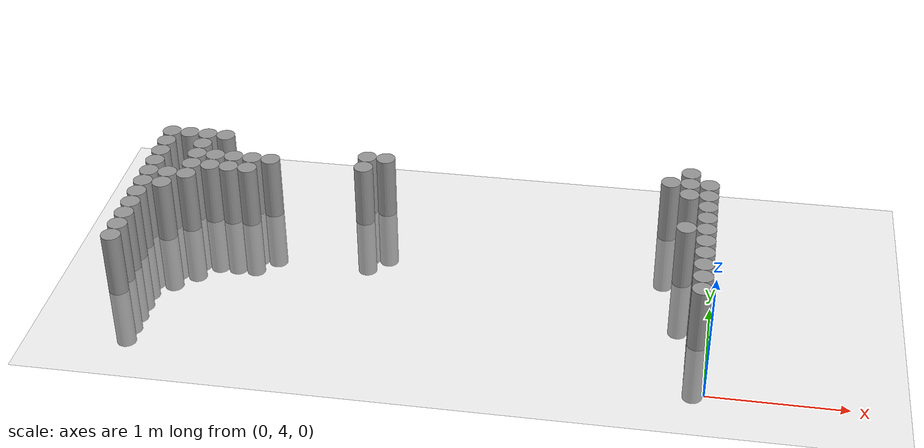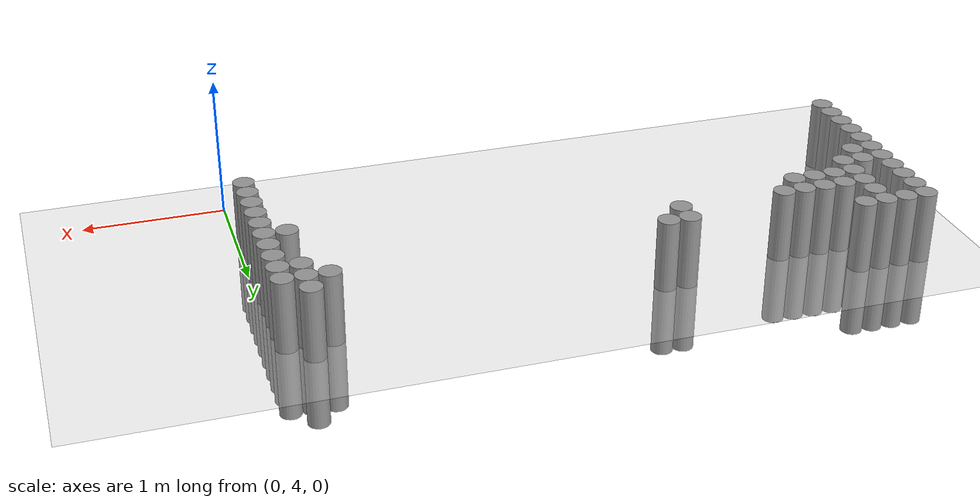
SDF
<sdf version="1.6">
 <world name="default">
  <model name="ground_plane">
   <static>1</static>
   <link name="link">
    <collision name="collision">
     <geometry><plane><normal>0 0 1</normal><size>100 100</size></plane></geometry>
     <surface><friction><ode><mu>100</mu><mu2>50</mu2></ode></friction></surface>
    </collision>
    <visual name="visual">
     <cast_shadows>0</cast_shadows>
     <geometry><plane><normal>0 0 1</normal><size>100 100</size></plane></geometry>
     <material>
      <script><uri>file://media/materials/scripts/gazebo.material</uri><name>Gazebo/Grey</name></script>
     </material>
    </visual>
   </link>
  </model>
  <model name="unit_cylinder_88">
   <pose>-0.075000 4.575000 0.000000 0.000000 0.000000 0.000000</pose>
   <link name="link">
    <inertial>
     <mass>1</mass>
     <inertia><ixx>0.145833</ixx><ixy>0</ixy><ixz>0</ixz><iyy>0.145833</iyy><iyz>0</iyz><izz>0.125</izz></inertia>
    </inertial>
    <collision name="collision">
     <geometry><cylinder><radius>0.075000</radius><length>1</length></cylinder></geometry>
    </collision>
    <visual name="visual">
     <geometry><cylinder><radius>0.075000</radius><length>1</length></cylinder></geometry>
     <material>
      <script><name>Gazebo/Grey</name><uri>file://media/materials/scripts/gazebo.material</uri></script>
     </material>
    </visual>
   </link>
  </model>
  <model name="unit_cylinder_89">
   <pose>-4.425000 4.575000 0.000000 0.000000 0.000000 0.000000</pose>
   <link name="link">
    <inertial>
     <mass>1</mass>
     <inertia><ixx>0.145833</ixx><ixy>0</ixy><ixz>0</ixz><iyy>0.145833</iyy><iyz>0</iyz><izz>0.125</izz></inertia>
    </inertial>
    <collision name="collision">
     <geometry><cylinder><radius>0.075000</radius><length>1</length></cylinder></geometry>
    </collision>
    <visual name="visual">
     <geometry><cylinder><radius>0.075000</radius><length>1</length></cylinder></geometry>
     <material>
      <script><name>Gazebo/Grey</name><uri>file://media/materials/scripts/gazebo.material</uri></script>
     </material>
    </visual>
   </link>
  </model>
  <model name="unit_cylinder_90">
   <pose>-0.075000 4.725000 0.000000 0.000000 0.000000 0.000000</pose>
   <link name="link">
    <inertial>
     <mass>1</mass>
     <inertia><ixx>0.145833</ixx><ixy>0</ixy><ixz>0</ixz><iyy>0.145833</iyy><iyz>0</iyz><izz>0.125</izz></inertia>
    </inertial>
    <collision name="collision">
     <geometry><cylinder><radius>0.075000</radius><length>1</length></cylinder></geometry>
    </collision>
    <visual name="visual">
     <geometry><cylinder><radius>0.075000</radius><length>1</length></cylinder></geometry>
     <material>
      <script><name>Gazebo/Grey</name><uri>file://media/materials/scripts/gazebo.material</uri></script>
     </material>
    </visual>
   </link>
  </model>
  <model name="unit_cylinder_91">
   <pose>-4.425000 4.725000 0.000000 0.000000 0.000000 0.000000</pose>
   <link name="link">
    <inertial>
     <mass>1</mass>
     <inertia><ixx>0.145833</ixx><ixy>0</ixy><ixz>0</ixz><iyy>0.145833</iyy><iyz>0</iyz><izz>0.125</izz></inertia>
    </inertial>
    <collision name="collision">
     <geometry><cylinder><radius>0.075000</radius><length>1</length></cylinder></geometry>
    </collision>
    <visual name="visual">
     <geometry><cylinder><radius>0.075000</radius><length>1</length></cylinder></geometry>
     <material>
      <script><name>Gazebo/Grey</name><uri>file://media/materials/scripts/gazebo.material</uri></script>
     </material>
    </visual>
   </link>
  </model>
  <model name="unit_cylinder_92">
   <pose>-0.075000 4.875000 0.000000 0.000000 0.000000 0.000000</pose>
   <link name="link">
    <inertial>
     <mass>1</mass>
     <inertia><ixx>0.145833</ixx><ixy>0</ixy><ixz>0</ixz><iyy>0.145833</iyy><iyz>0</iyz><izz>0.125</izz></inertia>
    </inertial>
    <collision name="collision">
     <geometry><cylinder><radius>0.075000</radius><length>1</length></cylinder></geometry>
    </collision>
    <visual name="visual">
     <geometry><cylinder><radius>0.075000</radius><length>1</length></cylinder></geometry>
     <material>
      <script><name>Gazebo/Grey</name><uri>file://media/materials/scripts/gazebo.material</uri></script>
     </material>
    </visual>
   </link>
  </model>
  <model name="unit_cylinder_93">
   <pose>-4.425000 4.875000 0.000000 0.000000 0.000000 0.000000</pose>
   <link name="link">
    <inertial>
     <mass>1</mass>
     <inertia><ixx>0.145833</ixx><ixy>0</ixy><ixz>0</ixz><iyy>0.145833</iyy><iyz>0</iyz><izz>0.125</izz></inertia>
    </inertial>
    <collision name="collision">
     <geometry><cylinder><radius>0.075000</radius><length>1</length></cylinder></geometry>
    </collision>
    <visual name="visual">
     <geometry><cylinder><radius>0.075000</radius><length>1</length></cylinder></geometry>
     <material>
      <script><name>Gazebo/Grey</name><uri>file://media/materials/scripts/gazebo.material</uri></script>
     </material>
    </visual>
   </link>
  </model>
  <model name="unit_cylinder_94">
   <pose>-0.075000 5.025000 0.000000 0.000000 0.000000 0.000000</pose>
   <link name="link">
    <inertial>
     <mass>1</mass>
     <inertia><ixx>0.145833</ixx><ixy>0</ixy><ixz>0</ixz><iyy>0.145833</iyy><iyz>0</iyz><izz>0.125</izz></inertia>
    </inertial>
    <collision name="collision">
     <geometry><cylinder><radius>0.075000</radius><length>1</length></cylinder></geometry>
    </collision>
    <visual name="visual">
     <geometry><cylinder><radius>0.075000</radius><length>1</length></cylinder></geometry>
     <material>
      <script><name>Gazebo/Grey</name><uri>file://media/materials/scripts/gazebo.material</uri></script>
     </material>
    </visual>
   </link>
  </model>
  <model name="unit_cylinder_95">
   <pose>-4.425000 5.025000 0.000000 0.000000 0.000000 0.000000</pose>
   <link name="link">
    <inertial>
     <mass>1</mass>
     <inertia><ixx>0.145833</ixx><ixy>0</ixy><ixz>0</ixz><iyy>0.145833</iyy><iyz>0</iyz><izz>0.125</izz></inertia>
    </inertial>
    <collision name="collision">
     <geometry><cylinder><radius>0.075000</radius><length>1</length></cylinder></geometry>
    </collision>
    <visual name="visual">
     <geometry><cylinder><radius>0.075000</radius><length>1</length></cylinder></geometry>
     <material>
      <script><name>Gazebo/Grey</name><uri>file://media/materials/scripts/gazebo.material</uri></script>
     </material>
    </visual>
   </link>
  </model>
  <model name="unit_cylinder_96">
   <pose>-4.425000 5.175000 0.000000 0.000000 0.000000 0.000000</pose>
   <link name="link">
    <inertial>
     <mass>1</mass>
     <inertia><ixx>0.145833</ixx><ixy>0</ixy><ixz>0</ixz><iyy>0.145833</iyy><iyz>0</iyz><izz>0.125</izz></inertia>
    </inertial>
    <collision name="collision">
     <geometry><cylinder><radius>0.075000</radius><length>1</length></cylinder></geometry>
    </collision>
    <visual name="visual">
     <geometry><cylinder><radius>0.075000</radius><length>1</length></cylinder></geometry>
     <material>
      <script><name>Gazebo/Grey</name><uri>file://media/materials/scripts/gazebo.material</uri></script>
     </material>
    </visual>
   </link>
  </model>
  <model name="unit_cylinder_97">
   <pose>-4.425000 5.325000 0.000000 0.000000 0.000000 0.000000</pose>
   <link name="link">
    <inertial>
     <mass>1</mass>
     <inertia><ixx>0.145833</ixx><ixy>0</ixy><ixz>0</ixz><iyy>0.145833</iyy><iyz>0</iyz><izz>0.125</izz></inertia>
    </inertial>
    <collision name="collision">
     <geometry><cylinder><radius>0.075000</radius><length>1</length></cylinder></geometry>
    </collision>
    <visual name="visual">
     <geometry><cylinder><radius>0.075000</radius><length>1</length></cylinder></geometry>
     <material>
      <script><name>Gazebo/Grey</name><uri>file://media/materials/scripts/gazebo.material</uri></script>
     </material>
    </visual>
   </link>
  </model>
  <model name="unit_cylinder_98">
   <pose>-4.425000 5.475000 0.000000 0.000000 0.000000 0.000000</pose>
   <link name="link">
    <inertial>
     <mass>1</mass>
     <inertia><ixx>0.145833</ixx><ixy>0</ixy><ixz>0</ixz><iyy>0.145833</iyy><iyz>0</iyz><izz>0.125</izz></inertia>
    </inertial>
    <collision name="collision">
     <geometry><cylinder><radius>0.075000</radius><length>1</length></cylinder></geometry>
    </collision>
    <visual name="visual">
     <geometry><cylinder><radius>0.075000</radius><length>1</length></cylinder></geometry>
     <material>
      <script><name>Gazebo/Grey</name><uri>file://media/materials/scripts/gazebo.material</uri></script>
     </material>
    </visual>
   </link>
  </model>
  <model name="unit_cylinder_99">
   <pose>-4.425000 5.625000 0.000000 0.000000 0.000000 0.000000</pose>
   <link name="link">
    <inertial>
     <mass>1</mass>
     <inertia><ixx>0.145833</ixx><ixy>0</ixy><ixz>0</ixz><iyy>0.145833</iyy><iyz>0</iyz><izz>0.125</izz></inertia>
    </inertial>
    <collision name="collision">
     <geometry><cylinder><radius>0.075000</radius><length>1</length></cylinder></geometry>
    </collision>
    <visual name="visual">
     <geometry><cylinder><radius>0.075000</radius><length>1</length></cylinder></geometry>
     <material>
      <script><name>Gazebo/Grey</name><uri>file://media/materials/scripts/gazebo.material</uri></script>
     </material>
    </visual>
   </link>
  </model>
  <model name="unit_cylinder_100">
   <pose>-4.425000 5.775000 0.000000 0.000000 0.000000 0.000000</pose>
   <link name="link">
    <inertial>
     <mass>1</mass>
     <inertia><ixx>0.145833</ixx><ixy>0</ixy><ixz>0</ixz><iyy>0.145833</iyy><iyz>0</iyz><izz>0.125</izz></inertia>
    </inertial>
    <collision name="collision">
     <geometry><cylinder><radius>0.075000</radius><length>1</length></cylinder></geometry>
    </collision>
    <visual name="visual">
     <geometry><cylinder><radius>0.075000</radius><length>1</length></cylinder></geometry>
     <material>
      <script><name>Gazebo/Grey</name><uri>file://media/materials/scripts/gazebo.material</uri></script>
     </material>
    </visual>
   </link>
  </model>
  <model name="unit_cylinder_101">
   <pose>-4.425000 5.925000 0.000000 0.000000 0.000000 0.000000</pose>
   <link name="link">
    <inertial>
     <mass>1</mass>
     <inertia><ixx>0.145833</ixx><ixy>0</ixy><ixz>0</ixz><iyy>0.145833</iyy><iyz>0</iyz><izz>0.125</izz></inertia>
    </inertial>
    <collision name="collision">
     <geometry><cylinder><radius>0.075000</radius><length>1</length></cylinder></geometry>
    </collision>
    <visual name="visual">
     <geometry><cylinder><radius>0.075000</radius><length>1</length></cylinder></geometry>
     <material>
      <script><name>Gazebo/Grey</name><uri>file://media/materials/scripts/gazebo.material</uri></script>
     </material>
    </visual>
   </link>
  </model>
  <model name="unit_cylinder_102">
   <pose>-4.425000 6.075000 0.000000 0.000000 0.000000 0.000000</pose>
   <link name="link">
    <inertial>
     <mass>1</mass>
     <inertia><ixx>0.145833</ixx><ixy>0</ixy><ixz>0</ixz><iyy>0.145833</iyy><iyz>0</iyz><izz>0.125</izz></inertia>
    </inertial>
    <collision name="collision">
     <geometry><cylinder><radius>0.075000</radius><length>1</length></cylinder></geometry>
    </collision>
    <visual name="visual">
     <geometry><cylinder><radius>0.075000</radius><length>1</length></cylinder></geometry>
     <material>
      <script><name>Gazebo/Grey</name><uri>file://media/materials/scripts/gazebo.material</uri></script>
     </material>
    </visual>
   </link>
  </model>
  <model name="unit_cylinder_126">
   <pose>-4.275000 5.325000 0.000000 0.000000 0.000000 0.000000</pose>
   <link name="link">
    <inertial>
     <mass>1</mass>
     <inertia><ixx>0.145833</ixx><ixy>0</ixy><ixz>0</ixz><iyy>0.145833</iyy><iyz>0</iyz><izz>0.125</izz></inertia>
    </inertial>
    <collision name="collision">
     <geometry><cylinder><radius>0.075000</radius><length>1</length></cylinder></geometry>
    </collision>
    <visual name="visual">
     <geometry><cylinder><radius>0.075000</radius><length>1</length></cylinder></geometry>
     <material>
      <script><name>Gazebo/Grey</name><uri>file://media/materials/scripts/gazebo.material</uri></script>
     </material>
    </visual>
   </link>
  </model>
  <model name="unit_cylinder_127">
   <pose>-4.275000 5.475000 0.000000 0.000000 0.000000 0.000000</pose>
   <link name="link">
    <inertial>
     <mass>1</mass>
     <inertia><ixx>0.145833</ixx><ixy>0</ixy><ixz>0</ixz><iyy>0.145833</iyy><iyz>0</iyz><izz>0.125</izz></inertia>
    </inertial>
    <collision name="collision">
     <geometry><cylinder><radius>0.075000</radius><length>1</length></cylinder></geometry>
    </collision>
    <visual name="visual">
     <geometry><cylinder><radius>0.075000</radius><length>1</length></cylinder></geometry>
     <material>
      <script><name>Gazebo/Grey</name><uri>file://media/materials/scripts/gazebo.material</uri></script>
     </material>
    </visual>
   </link>
  </model>
  <model name="unit_cylinder_128">
   <pose>-4.275000 6.075000 0.000000 0.000000 0.000000 0.000000</pose>
   <link name="link">
    <inertial>
     <mass>1</mass>
     <inertia><ixx>0.145833</ixx><ixy>0</ixy><ixz>0</ixz><iyy>0.145833</iyy><iyz>0</iyz><izz>0.125</izz></inertia>
    </inertial>
    <collision name="collision">
     <geometry><cylinder><radius>0.075000</radius><length>1</length></cylinder></geometry>
    </collision>
    <visual name="visual">
     <geometry><cylinder><radius>0.075000</radius><length>1</length></cylinder></geometry>
     <material>
      <script><name>Gazebo/Grey</name><uri>file://media/materials/scripts/gazebo.material</uri></script>
     </material>
    </visual>
   </link>
  </model>
  <model name="unit_cylinder_144">
   <pose>-4.125000 5.475000 0.000000 0.000000 0.000000 0.000000</pose>
   <link name="link">
    <inertial>
     <mass>1</mass>
     <inertia><ixx>0.145833</ixx><ixy>0</ixy><ixz>0</ixz><iyy>0.145833</iyy><iyz>0</iyz><izz>0.125</izz></inertia>
    </inertial>
    <collision name="collision">
     <geometry><cylinder><radius>0.075000</radius><length>1</length></cylinder></geometry>
    </collision>
    <visual name="visual">
     <geometry><cylinder><radius>0.075000</radius><length>1</length></cylinder></geometry>
     <material>
      <script><name>Gazebo/Grey</name><uri>file://media/materials/scripts/gazebo.material</uri></script>
     </material>
    </visual>
   </link>
  </model>
  <model name="unit_cylinder_145">
   <pose>-4.125000 5.625000 0.000000 0.000000 0.000000 0.000000</pose>
   <link name="link">
    <inertial>
     <mass>1</mass>
     <inertia><ixx>0.145833</ixx><ixy>0</ixy><ixz>0</ixz><iyy>0.145833</iyy><iyz>0</iyz><izz>0.125</izz></inertia>
    </inertial>
    <collision name="collision">
     <geometry><cylinder><radius>0.075000</radius><length>1</length></cylinder></geometry>
    </collision>
    <visual name="visual">
     <geometry><cylinder><radius>0.075000</radius><length>1</length></cylinder></geometry>
     <material>
      <script><name>Gazebo/Grey</name><uri>file://media/materials/scripts/gazebo.material</uri></script>
     </material>
    </visual>
   </link>
  </model>
  <model name="unit_cylinder_146">
   <pose>-4.125000 5.775000 0.000000 0.000000 0.000000 0.000000</pose>
   <link name="link">
    <inertial>
     <mass>1</mass>
     <inertia><ixx>0.145833</ixx><ixy>0</ixy><ixz>0</ixz><iyy>0.145833</iyy><iyz>0</iyz><izz>0.125</izz></inertia>
    </inertial>
    <collision name="collision">
     <geometry><cylinder><radius>0.075000</radius><length>1</length></cylinder></geometry>
    </collision>
    <visual name="visual">
     <geometry><cylinder><radius>0.075000</radius><length>1</length></cylinder></geometry>
     <material>
      <script><name>Gazebo/Grey</name><uri>file://media/materials/scripts/gazebo.material</uri></script>
     </material>
    </visual>
   </link>
  </model>
  <model name="unit_cylinder_147">
   <pose>-4.125000 5.925000 0.000000 0.000000 0.000000 0.000000</pose>
   <link name="link">
    <inertial>
     <mass>1</mass>
     <inertia><ixx>0.145833</ixx><ixy>0</ixy><ixz>0</ixz><iyy>0.145833</iyy><iyz>0</iyz><izz>0.125</izz></inertia>
    </inertial>
    <collision name="collision">
     <geometry><cylinder><radius>0.075000</radius><length>1</length></cylinder></geometry>
    </collision>
    <visual name="visual">
     <geometry><cylinder><radius>0.075000</radius><length>1</length></cylinder></geometry>
     <material>
      <script><name>Gazebo/Grey</name><uri>file://media/materials/scripts/gazebo.material</uri></script>
     </material>
    </visual>
   </link>
  </model>
  <model name="unit_cylinder_148">
   <pose>-4.125000 6.075000 0.000000 0.000000 0.000000 0.000000</pose>
   <link name="link">
    <inertial>
     <mass>1</mass>
     <inertia><ixx>0.145833</ixx><ixy>0</ixy><ixz>0</ixz><iyy>0.145833</iyy><iyz>0</iyz><izz>0.125</izz></inertia>
    </inertial>
    <collision name="collision">
     <geometry><cylinder><radius>0.075000</radius><length>1</length></cylinder></geometry>
    </collision>
    <visual name="visual">
     <geometry><cylinder><radius>0.075000</radius><length>1</length></cylinder></geometry>
     <material>
      <script><name>Gazebo/Grey</name><uri>file://media/materials/scripts/gazebo.material</uri></script>
     </material>
    </visual>
   </link>
  </model>
  <model name="unit_cylinder_151">
   <pose>-3.975000 5.625000 0.000000 0.000000 0.000000 0.000000</pose>
   <link name="link">
    <inertial>
     <mass>1</mass>
     <inertia><ixx>0.145833</ixx><ixy>0</ixy><ixz>0</ixz><iyy>0.145833</iyy><iyz>0</iyz><izz>0.125</izz></inertia>
    </inertial>
    <collision name="collision">
     <geometry><cylinder><radius>0.075000</radius><length>1</length></cylinder></geometry>
    </collision>
    <visual name="visual">
     <geometry><cylinder><radius>0.075000</radius><length>1</length></cylinder></geometry>
     <material>
      <script><name>Gazebo/Grey</name><uri>file://media/materials/scripts/gazebo.material</uri></script>
     </material>
    </visual>
   </link>
  </model>
  <model name="unit_cylinder_152">
   <pose>-3.975000 5.775000 0.000000 0.000000 0.000000 0.000000</pose>
   <link name="link">
    <inertial>
     <mass>1</mass>
     <inertia><ixx>0.145833</ixx><ixy>0</ixy><ixz>0</ixz><iyy>0.145833</iyy><iyz>0</iyz><izz>0.125</izz></inertia>
    </inertial>
    <collision name="collision">
     <geometry><cylinder><radius>0.075000</radius><length>1</length></cylinder></geometry>
    </collision>
    <visual name="visual">
     <geometry><cylinder><radius>0.075000</radius><length>1</length></cylinder></geometry>
     <material>
      <script><name>Gazebo/Grey</name><uri>file://media/materials/scripts/gazebo.material</uri></script>
     </material>
    </visual>
   </link>
  </model>
  <model name="unit_cylinder_153">
   <pose>-3.975000 6.075000 0.000000 0.000000 0.000000 0.000000</pose>
   <link name="link">
    <inertial>
     <mass>1</mass>
     <inertia><ixx>0.145833</ixx><ixy>0</ixy><ixz>0</ixz><iyy>0.145833</iyy><iyz>0</iyz><izz>0.125</izz></inertia>
    </inertial>
    <collision name="collision">
     <geometry><cylinder><radius>0.075000</radius><length>1</length></cylinder></geometry>
    </collision>
    <visual name="visual">
     <geometry><cylinder><radius>0.075000</radius><length>1</length></cylinder></geometry>
     <material>
      <script><name>Gazebo/Grey</name><uri>file://media/materials/scripts/gazebo.material</uri></script>
     </material>
    </visual>
   </link>
  </model>
  <model name="unit_cylinder_154">
   <pose>-3.825000 5.625000 0.000000 0.000000 0.000000 0.000000</pose>
   <link name="link">
    <inertial>
     <mass>1</mass>
     <inertia><ixx>0.145833</ixx><ixy>0</ixy><ixz>0</ixz><iyy>0.145833</iyy><iyz>0</iyz><izz>0.125</izz></inertia>
    </inertial>
    <collision name="collision">
     <geometry><cylinder><radius>0.075000</radius><length>1</length></cylinder></geometry>
    </collision>
    <visual name="visual">
     <geometry><cylinder><radius>0.075000</radius><length>1</length></cylinder></geometry>
     <material>
      <script><name>Gazebo/Grey</name><uri>file://media/materials/scripts/gazebo.material</uri></script>
     </material>
    </visual>
   </link>
  </model>
  <model name="unit_cylinder_155">
   <pose>-3.825000 5.775000 0.000000 0.000000 0.000000 0.000000</pose>
   <link name="link">
    <inertial>
     <mass>1</mass>
     <inertia><ixx>0.145833</ixx><ixy>0</ixy><ixz>0</ixz><iyy>0.145833</iyy><iyz>0</iyz><izz>0.125</izz></inertia>
    </inertial>
    <collision name="collision">
     <geometry><cylinder><radius>0.075000</radius><length>1</length></cylinder></geometry>
    </collision>
    <visual name="visual">
     <geometry><cylinder><radius>0.075000</radius><length>1</length></cylinder></geometry>
     <material>
      <script><name>Gazebo/Grey</name><uri>file://media/materials/scripts/gazebo.material</uri></script>
     </material>
    </visual>
   </link>
  </model>
  <model name="unit_cylinder_156">
   <pose>-3.675000 5.625000 0.000000 0.000000 0.000000 0.000000</pose>
   <link name="link">
    <inertial>
     <mass>1</mass>
     <inertia><ixx>0.145833</ixx><ixy>0</ixy><ixz>0</ixz><iyy>0.145833</iyy><iyz>0</iyz><izz>0.125</izz></inertia>
    </inertial>
    <collision name="collision">
     <geometry><cylinder><radius>0.075000</radius><length>1</length></cylinder></geometry>
    </collision>
    <visual name="visual">
     <geometry><cylinder><radius>0.075000</radius><length>1</length></cylinder></geometry>
     <material>
      <script><name>Gazebo/Grey</name><uri>file://media/materials/scripts/gazebo.material</uri></script>
     </material>
    </visual>
   </link>
  </model>
  <model name="unit_cylinder_157">
   <pose>-3.675000 5.775000 0.000000 0.000000 0.000000 0.000000</pose>
   <link name="link">
    <inertial>
     <mass>1</mass>
     <inertia><ixx>0.145833</ixx><ixy>0</ixy><ixz>0</ixz><iyy>0.145833</iyy><iyz>0</iyz><izz>0.125</izz></inertia>
    </inertial>
    <collision name="collision">
     <geometry><cylinder><radius>0.075000</radius><length>1</length></cylinder></geometry>
    </collision>
    <visual name="visual">
     <geometry><cylinder><radius>0.075000</radius><length>1</length></cylinder></geometry>
     <material>
      <script><name>Gazebo/Grey</name><uri>file://media/materials/scripts/gazebo.material</uri></script>
     </material>
    </visual>
   </link>
  </model>
  <model name="unit_cylinder_158">
   <pose>-3.525000 5.775000 0.000000 0.000000 0.000000 0.000000</pose>
   <link name="link">
    <inertial>
     <mass>1</mass>
     <inertia><ixx>0.145833</ixx><ixy>0</ixy><ixz>0</ixz><iyy>0.145833</iyy><iyz>0</iyz><izz>0.125</izz></inertia>
    </inertial>
    <collision name="collision">
     <geometry><cylinder><radius>0.075000</radius><length>1</length></cylinder></geometry>
    </collision>
    <visual name="visual">
     <geometry><cylinder><radius>0.075000</radius><length>1</length></cylinder></geometry>
     <material>
      <script><name>Gazebo/Grey</name><uri>file://media/materials/scripts/gazebo.material</uri></script>
     </material>
    </visual>
   </link>
  </model>
  <model name="unit_cylinder_165">
   <pose>-2.775000 5.775000 0.000000 0.000000 0.000000 0.000000</pose>
   <link name="link">
    <inertial>
     <mass>1</mass>
     <inertia><ixx>0.145833</ixx><ixy>0</ixy><ixz>0</ixz><iyy>0.145833</iyy><iyz>0</iyz><izz>0.125</izz></inertia>
    </inertial>
    <collision name="collision">
     <geometry><cylinder><radius>0.075000</radius><length>1</length></cylinder></geometry>
    </collision>
    <visual name="visual">
     <geometry><cylinder><radius>0.075000</radius><length>1</length></cylinder></geometry>
     <material>
      <script><name>Gazebo/Grey</name><uri>file://media/materials/scripts/gazebo.material</uri></script>
     </material>
    </visual>
   </link>
  </model>
  <model name="unit_cylinder_166">
   <pose>-2.775000 5.925000 0.000000 0.000000 0.000000 0.000000</pose>
   <link name="link">
    <inertial>
     <mass>1</mass>
     <inertia><ixx>0.145833</ixx><ixy>0</ixy><ixz>0</ixz><iyy>0.145833</iyy><iyz>0</iyz><izz>0.125</izz></inertia>
    </inertial>
    <collision name="collision">
     <geometry><cylinder><radius>0.075000</radius><length>1</length></cylinder></geometry>
    </collision>
    <visual name="visual">
     <geometry><cylinder><radius>0.075000</radius><length>1</length></cylinder></geometry>
     <material>
      <script><name>Gazebo/Grey</name><uri>file://media/materials/scripts/gazebo.material</uri></script>
     </material>
    </visual>
   </link>
  </model>
  <model name="unit_cylinder_171">
   <pose>-2.625000 5.925000 0.000000 0.000000 0.000000 0.000000</pose>
   <link name="link">
    <inertial>
     <mass>1</mass>
     <inertia><ixx>0.145833</ixx><ixy>0</ixy><ixz>0</ixz><iyy>0.145833</iyy><iyz>0</iyz><izz>0.125</izz></inertia>
    </inertial>
    <collision name="collision">
     <geometry><cylinder><radius>0.075000</radius><length>1</length></cylinder></geometry>
    </collision>
    <visual name="visual">
     <geometry><cylinder><radius>0.075000</radius><length>1</length></cylinder></geometry>
     <material>
      <script><name>Gazebo/Grey</name><uri>file://media/materials/scripts/gazebo.material</uri></script>
     </material>
    </visual>
   </link>
  </model>
  <model name="unit_cylinder_214">
   <pose>-0.375000 5.925000 0.000000 0.000000 0.000000 0.000000</pose>
   <link name="link">
    <inertial>
     <mass>1</mass>
     <inertia><ixx>0.145833</ixx><ixy>0</ixy><ixz>0</ixz><iyy>0.145833</iyy><iyz>0</iyz><izz>0.125</izz></inertia>
    </inertial>
    <collision name="collision">
     <geometry><cylinder><radius>0.075000</radius><length>1</length></cylinder></geometry>
    </collision>
    <visual name="visual">
     <geometry><cylinder><radius>0.075000</radius><length>1</length></cylinder></geometry>
     <material>
      <script><name>Gazebo/Grey</name><uri>file://media/materials/scripts/gazebo.material</uri></script>
     </material>
    </visual>
   </link>
  </model>
  <model name="unit_cylinder_223">
   <pose>-0.225000 5.325000 0.000000 0.000000 0.000000 0.000000</pose>
   <link name="link">
    <inertial>
     <mass>1</mass>
     <inertia><ixx>0.145833</ixx><ixy>0</ixy><ixz>0</ixz><iyy>0.145833</iyy><iyz>0</iyz><izz>0.125</izz></inertia>
    </inertial>
    <collision name="collision">
     <geometry><cylinder><radius>0.075000</radius><length>1</length></cylinder></geometry>
    </collision>
    <visual name="visual">
     <geometry><cylinder><radius>0.075000</radius><length>1</length></cylinder></geometry>
     <material>
      <script><name>Gazebo/Grey</name><uri>file://media/materials/scripts/gazebo.material</uri></script>
     </material>
    </visual>
   </link>
  </model>
  <model name="unit_cylinder_224">
   <pose>-0.225000 5.775000 0.000000 0.000000 0.000000 0.000000</pose>
   <link name="link">
    <inertial>
     <mass>1</mass>
     <inertia><ixx>0.145833</ixx><ixy>0</ixy><ixz>0</ixz><iyy>0.145833</iyy><iyz>0</iyz><izz>0.125</izz></inertia>
    </inertial>
    <collision name="collision">
     <geometry><cylinder><radius>0.075000</radius><length>1</length></cylinder></geometry>
    </collision>
    <visual name="visual">
     <geometry><cylinder><radius>0.075000</radius><length>1</length></cylinder></geometry>
     <material>
      <script><name>Gazebo/Grey</name><uri>file://media/materials/scripts/gazebo.material</uri></script>
     </material>
    </visual>
   </link>
  </model>
  <model name="unit_cylinder_225">
   <pose>-0.225000 5.925000 0.000000 0.000000 0.000000 0.000000</pose>
   <link name="link">
    <inertial>
     <mass>1</mass>
     <inertia><ixx>0.145833</ixx><ixy>0</ixy><ixz>0</ixz><iyy>0.145833</iyy><iyz>0</iyz><izz>0.125</izz></inertia>
    </inertial>
    <collision name="collision">
     <geometry><cylinder><radius>0.075000</radius><length>1</length></cylinder></geometry>
    </collision>
    <visual name="visual">
     <geometry><cylinder><radius>0.075000</radius><length>1</length></cylinder></geometry>
     <material>
      <script><name>Gazebo/Grey</name><uri>file://media/materials/scripts/gazebo.material</uri></script>
     </material>
    </visual>
   </link>
  </model>
  <model name="unit_cylinder_226">
   <pose>-0.225000 6.075000 0.000000 0.000000 0.000000 0.000000</pose>
   <link name="link">
    <inertial>
     <mass>1</mass>
     <inertia><ixx>0.145833</ixx><ixy>0</ixy><ixz>0</ixz><iyy>0.145833</iyy><iyz>0</iyz><izz>0.125</izz></inertia>
    </inertial>
    <collision name="collision">
     <geometry><cylinder><radius>0.075000</radius><length>1</length></cylinder></geometry>
    </collision>
    <visual name="visual">
     <geometry><cylinder><radius>0.075000</radius><length>1</length></cylinder></geometry>
     <material>
      <script><name>Gazebo/Grey</name><uri>file://media/materials/scripts/gazebo.material</uri></script>
     </material>
    </visual>
   </link>
  </model>
  <model name="unit_cylinder_235">
   <pose>-0.075000 5.175000 0.000000 0.000000 0.000000 0.000000</pose>
   <link name="link">
    <inertial>
     <mass>1</mass>
     <inertia><ixx>0.145833</ixx><ixy>0</ixy><ixz>0</ixz><iyy>0.145833</iyy><iyz>0</iyz><izz>0.125</izz></inertia>
    </inertial>
    <collision name="collision">
     <geometry><cylinder><radius>0.075000</radius><length>1</length></cylinder></geometry>
    </collision>
    <visual name="visual">
     <geometry><cylinder><radius>0.075000</radius><length>1</length></cylinder></geometry>
     <material>
      <script><name>Gazebo/Grey</name><uri>file://media/materials/scripts/gazebo.material</uri></script>
     </material>
    </visual>
   </link>
  </model>
  <model name="unit_cylinder_236">
   <pose>-0.075000 5.325000 0.000000 0.000000 0.000000 0.000000</pose>
   <link name="link">
    <inertial>
     <mass>1</mass>
     <inertia><ixx>0.145833</ixx><ixy>0</ixy><ixz>0</ixz><iyy>0.145833</iyy><iyz>0</iyz><izz>0.125</izz></inertia>
    </inertial>
    <collision name="collision">
     <geometry><cylinder><radius>0.075000</radius><length>1</length></cylinder></geometry>
    </collision>
    <visual name="visual">
     <geometry><cylinder><radius>0.075000</radius><length>1</length></cylinder></geometry>
     <material>
      <script><name>Gazebo/Grey</name><uri>file://media/materials/scripts/gazebo.material</uri></script>
     </material>
    </visual>
   </link>
  </model>
  <model name="unit_cylinder_237">
   <pose>-0.075000 5.475000 0.000000 0.000000 0.000000 0.000000</pose>
   <link name="link">
    <inertial>
     <mass>1</mass>
     <inertia><ixx>0.145833</ixx><ixy>0</ixy><ixz>0</ixz><iyy>0.145833</iyy><iyz>0</iyz><izz>0.125</izz></inertia>
    </inertial>
    <collision name="collision">
     <geometry><cylinder><radius>0.075000</radius><length>1</length></cylinder></geometry>
    </collision>
    <visual name="visual">
     <geometry><cylinder><radius>0.075000</radius><length>1</length></cylinder></geometry>
     <material>
      <script><name>Gazebo/Grey</name><uri>file://media/materials/scripts/gazebo.material</uri></script>
     </material>
    </visual>
   </link>
  </model>
  <model name="unit_cylinder_238">
   <pose>-0.075000 5.625000 0.000000 0.000000 0.000000 0.000000</pose>
   <link name="link">
    <inertial>
     <mass>1</mass>
     <inertia><ixx>0.145833</ixx><ixy>0</ixy><ixz>0</ixz><iyy>0.145833</iyy><iyz>0</iyz><izz>0.125</izz></inertia>
    </inertial>
    <collision name="collision">
     <geometry><cylinder><radius>0.075000</radius><length>1</length></cylinder></geometry>
    </collision>
    <visual name="visual">
     <geometry><cylinder><radius>0.075000</radius><length>1</length></cylinder></geometry>
     <material>
      <script><name>Gazebo/Grey</name><uri>file://media/materials/scripts/gazebo.material</uri></script>
     </material>
    </visual>
   </link>
  </model>
  <model name="unit_cylinder_239">
   <pose>-0.075000 5.775000 0.000000 0.000000 0.000000 0.000000</pose>
   <link name="link">
    <inertial>
     <mass>1</mass>
     <inertia><ixx>0.145833</ixx><ixy>0</ixy><ixz>0</ixz><iyy>0.145833</iyy><iyz>0</iyz><izz>0.125</izz></inertia>
    </inertial>
    <collision name="collision">
     <geometry><cylinder><radius>0.075000</radius><length>1</length></cylinder></geometry>
    </collision>
    <visual name="visual">
     <geometry><cylinder><radius>0.075000</radius><length>1</length></cylinder></geometry>
     <material>
      <script><name>Gazebo/Grey</name><uri>file://media/materials/scripts/gazebo.material</uri></script>
     </material>
    </visual>
   </link>
  </model>
  <model name="unit_cylinder_240">
   <pose>-0.075000 5.925000 0.000000 0.000000 0.000000 0.000000</pose>
   <link name="link">
    <inertial>
     <mass>1</mass>
     <inertia><ixx>0.145833</ixx><ixy>0</ixy><ixz>0</ixz><iyy>0.145833</iyy><iyz>0</iyz><izz>0.125</izz></inertia>
    </inertial>
    <collision name="collision">
     <geometry><cylinder><radius>0.075000</radius><length>1</length></cylinder></geometry>
    </collision>
    <visual name="visual">
     <geometry><cylinder><radius>0.075000</radius><length>1</length></cylinder></geometry>
     <material>
      <script><name>Gazebo/Grey</name><uri>file://media/materials/scripts/gazebo.material</uri></script>
     </material>
    </visual>
   </link>
  </model>
 </world>
</sdf>
